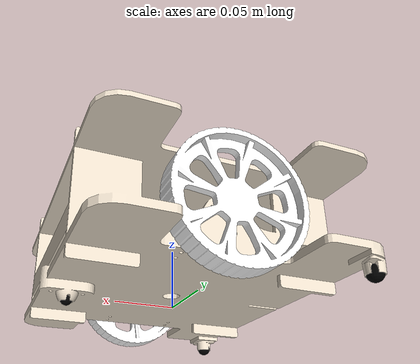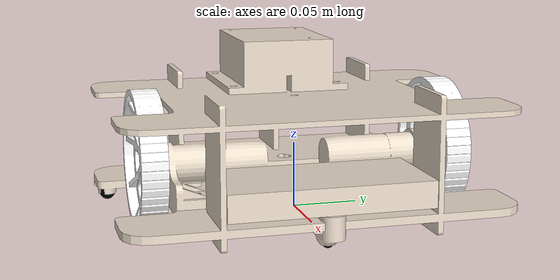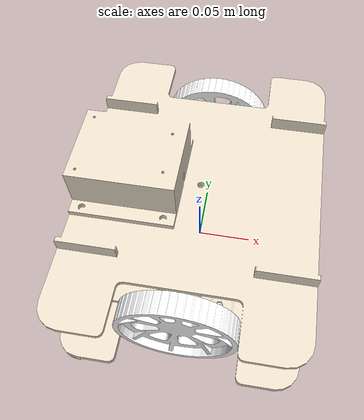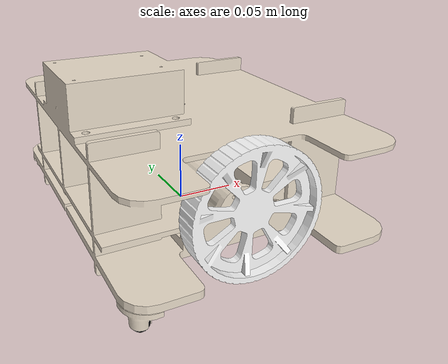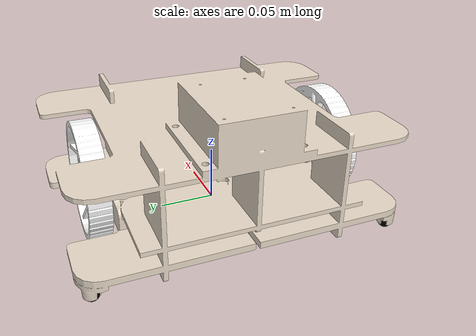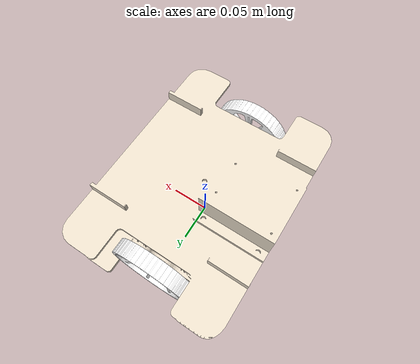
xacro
<?xml version="1.0"?>
<robot xmlns:xacro="http://www.ros.org/wiki/xacro">

    <xacro:include filename="inertial_macros.xacro" />

    <material name="white">
        <color rgba ="1 1 1 1"/>
    </material>

    <material name="blue">
        <color rgba ="0 0 1 1"/>
    </material>

    <material name="brown">
        <color rgba ="0.918 0.867 0.792 1"/>
    </material>

    <material name="black">
        <color rgba ="0 0 0 1"/>
    </material>

    <material name="green">
        <color rgba ="0 1 0 1"/>
    </material>

    <link name="base_link">
    </link>

    <joint name="base_footprint_joint" type="fixed">
        <parent link="base_link"/>
        <child link="base_footprint"/>
        <origin xyz="0 0 0" rpy="0 0 0"/>
    </joint>

    <link name="base_footprint">
    </link>

    <joint name="chassis_joint" type="fixed">
        <parent link="base_link"/>
        <child link="chassis"/>
        <origin xyz="-0.1 0 0"/>
    </joint>

    <link name="chassis">
        <visual>
            <origin xyz="0.10125 0 0.010"/>
            <geometry>
                <mesh filename="package://tankbot/meshes/chassis.stl"/>
            </geometry>
            <material name="brown"/>
        </visual>
        <collision>
            <origin xyz="0.1015 0 0.05"/>
            <geometry>
                <box size="0.215 0.201 0.10" />
            </geometry>
            <origin xyz="-0.01 0 0.01"/>
            <geometry>
                <box size="0.01 0.01 0.01" />
            </geometry>

        </collision>
        <inertial>
            <mass value="1"/>
            <inertia ixx="0.00556875" ixy="0.0" ixz="0.00489336" iyy="0.025445" iyz="0.0" izz="0.0276345"/>
        </inertial>
    </link>

    <gazebo reference="chassis">
        <material>Gazebo/Blue</material>
    </gazebo>

    <joint name="left_wheel_joint" type="continuous">
        <parent link="base_link"/>
        <child link="left_wheel"/>
        <origin xyz="0 0.105 0.044" rpy="-${pi/2} 0 0"/>
        <axis xyz="0 0 1"/>
    </joint>

    <link name="left_wheel">
        <visual>
            <geometry>
                <mesh filename="package://tankbot/meshes/left_wheel_link.stl"/>
            </geometry>
            <material name="white"/>
        </visual>
        <collision>
            <origin xyz="0 0.0 0.005"/>
            <geometry>
                <cylinder radius="0.052" length="0.02"/>
            </geometry>
        </collision>
        <xacro:inertial_cylinder mass="0.08" length="0.02" radius="0.052">
            <origin xyz="0 0 0" rpy="0 0 0"/>
        </xacro:inertial_cylinder>
    </link>
    <gazebo reference="left_wheel">
        <material>Gazebo/White</material>
    </gazebo>

    <joint name="right_wheel_joint" type="continuous">
        <parent link="base_link"/>
        <child link="right_wheel"/>
        <origin xyz="0 -0.105 0.044" rpy="${pi/2} 0 0"/>
        <axis xyz="0 0 -1"/>
    </joint>

    <link name="right_wheel">
        <visual>
            <geometry>
                <mesh filename="package://tankbot/meshes/right_wheel_link.stl"/>
            </geometry>
            <material name="white"/>
        </visual>
        <collision>
            <origin xyz="0 0.0 0.005"/>
            <geometry>
                <cylinder radius="0.052" length="0.02"/>
            </geometry>
        </collision>
        <xacro:inertial_cylinder mass="0.08" length="0.02" radius="0.052">
            <origin xyz="0 0 0" rpy="0 0 0"/>
        </xacro:inertial_cylinder>
    </link>
    <gazebo reference="right_wheel">
        <material>Gazebo/White</material>
    </gazebo>

    <joint name="caster_wheel_joint" type="fixed">
        <parent link="chassis"/>
        <child link="caster_wheel"/>
        <origin xyz="0.189 0 -0.0025" />
    </joint>

    <link name="caster_wheel">
        <visual>
            <geometry>
                <sphere radius="0.005"/>
            </geometry>
            <material name="black"/>
        </visual>
        <collision>
            <geometry>
                <sphere radius="0.005"/>
            </geometry>
        </collision>
        <xacro:inertial_sphere mass="0.004" radius="0.005">
            <origin xyz="0 0 0" rpy="0 0 0"/>
        </xacro:inertial_sphere>
    </link>
    <gazebo reference="caster_wheel">
        <material>Gazebo/Black</material>
        <mu1 value="0.0001"/>
        <mu2 value="0.0001"/>
    </gazebo>

        <joint name="caster_wheel_back_left_joint" type="fixed">
        <parent link="chassis"/>
        <child link="caster_wheel_back_left"/>
        <origin xyz="0.0075 0.1337 -0.002" />
    </joint>

    <link name="caster_wheel_back_left">
        <visual>
            <geometry>
                <sphere radius="0.0065"/>
            </geometry>
            <material name="black"/>
        </visual>
        <collision>
            <geometry>
                <sphere radius="0.0065"/>
            </geometry>
        </collision>
        <xacro:inertial_sphere mass="0.005" radius="0.0065">
            <origin xyz="0 0 0" rpy="0 0 0"/>
        </xacro:inertial_sphere>
    </link>
    <gazebo reference="caster_wheel_back_left">
        <material>Gazebo/Black</material>
        <mu1 value="0.0001"/>
        <mu2 value="0.0001"/>
    </gazebo>

    <joint name="caster_wheel_back_right_joint" type="fixed">
        <parent link="chassis"/>
        <child link="caster_wheel_back_right"/>
        <origin xyz="0.0075 -0.1337 -0.002" />
    </joint>

    <link name="caster_wheel_back_right">
        <visual>
            <geometry>
                <sphere radius="0.0065"/>
            </geometry>
            <material name="black"/>
        </visual>
        <collision>
            <geometry>
                <sphere radius="0.0065"/>
            </geometry>
        </collision>
        <xacro:inertial_sphere mass="0.005" radius="0.0065">
            <origin xyz="0 0 0" rpy="0 0 0"/>
        </xacro:inertial_sphere>
    </link>

   <gazebo reference="caster_wheel_back_right">
        <material>Gazebo/Black</material>
        <mu1 value="0.0001"/>
        <mu2 value="0.0001"/>
    </gazebo>

</robot>
